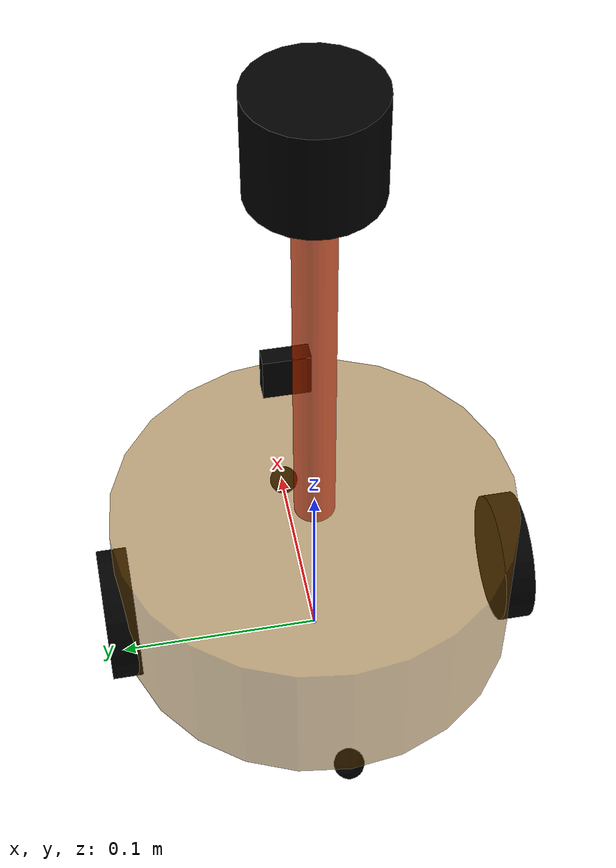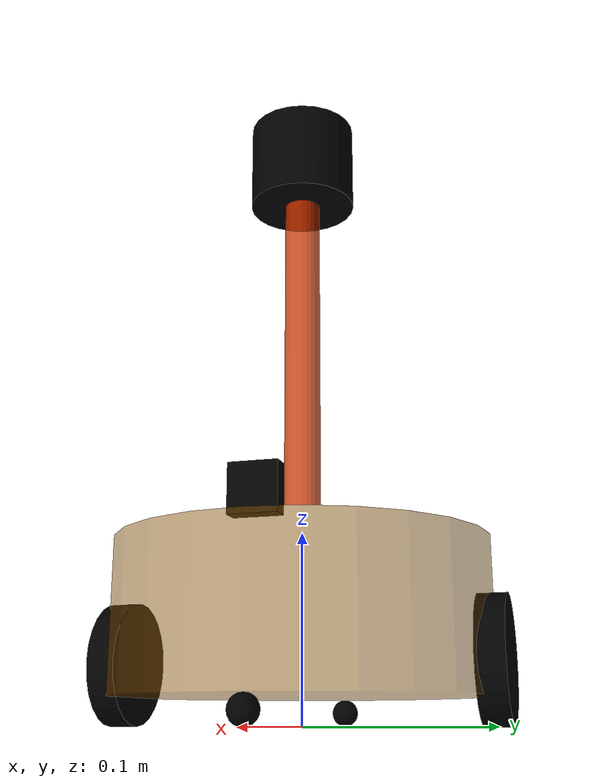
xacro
<?xml version="1.0"?>

<robot name="my_car_camera" xmlns:xacro="http://wiki.ros.org/xacro">
    <xacro:include filename="head.xacro" />
    <xacro:include filename="base.urdf.xacro" />
    <xacro:include filename="laser.urdf.xacro" />
    <xacro:include filename="imu.urdf.xacro" />

    <xacro:include filename="move.xacro" />
    <xacro:include filename="laser.xacro" />
    <xacro:include filename="imu.xacro" />
</robot>

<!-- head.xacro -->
<robot name="base" xmlns:xacro="http://wiki.ros.org/xacro">
    <!-- Macro for inertia matrix -->
    <xacro:macro name="sphere_inertial_matrix" params="m r">
        <inertial>
            <mass value="${m}" />
            <inertia ixx="${2*m*r*r/5}" ixy="0" ixz="0"
                iyy="${2*m*r*r/5}" iyz="0"
                izz="${2*m*r*r/5}" />
        </inertial>
    </xacro:macro>

    <xacro:macro name="cylinder_inertial_matrix" params="m r h">
        <inertial>
            <mass value="${m}" />
            <inertia ixx="${m*(3*r*r+h*h)/12}" ixy = "0" ixz = "0"
                iyy="${m*(3*r*r+h*h)/12}" iyz = "0"
                izz="${m*r*r/2}" />
        </inertial>
    </xacro:macro>

    <xacro:macro name="Box_inertial_matrix" params="m l w h">
       <inertial>
               <mass value="${m}" />
               <inertia ixx="${m*(h*h + l*l)/12}" ixy = "0" ixz = "0"
                   iyy="${m*(w*w + l*l)/12}" iyz= "0"
                   izz="${m*(w*w + h*h)/12}" />
       </inertial>
   </xacro:macro>
</robot>

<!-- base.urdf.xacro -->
<robot name="my_base" xmlns:xacro="http://www.ros.org/wiki/xacro">

    <xacro:property name="PI" value="3.1415926"/>

    <material name="black">
        <color rgba="0.0 0.0 0.0 1.0" />
    </material>

    <xacro:property name="base_footprint_radius" value="0.001" />
    <xacro:property name="base_link_radius" value="0.1" />
    <xacro:property name="base_link_length" value="0.08" />
    <xacro:property name="earth_space" value="0.015" />
    <xacro:property name="base_link_m" value="0.5" />

    <link name="base_footprint">
      <visual>
        <geometry>
          <sphere radius="${base_footprint_radius}" />
        </geometry>
      </visual>
    </link>

    <link name="base_link">
      <visual>
        <geometry>
          <cylinder radius="${base_link_radius}" length="${base_link_length}" />
        </geometry>
        <origin xyz="0 0 0" rpy="0 0 0" />
        <material name="yellow">
          <color rgba="0.5 0.3 0.0 0.5" />
        </material>
      </visual>
      <collision>
        <geometry>
          <cylinder radius="${base_link_radius}" length="${base_link_length}" />
        </geometry>
        <origin xyz="0 0 0" rpy="0 0 0" />
      </collision>
      <xacro:cylinder_inertial_matrix m="${base_link_m}" r="${base_link_radius}" h="${base_link_length}" />

    </link>

    <joint name="base_link2base_footprint" type="fixed">
      <parent link="base_footprint" />
      <child link="base_link" />
      <origin xyz="0 0 ${earth_space + base_link_length / 2 }" />
    </joint>
    <gazebo reference="base_link">
        <material>Gazebo/Yellow</material>
    </gazebo>

    <xacro:property name="wheel_radius" value="0.0325" />
    <xacro:property name="wheel_length" value="0.015" />
    <xacro:property name="wheel_m" value="0.05" />

    <xacro:macro name="add_wheels" params="name flag">
      <link name="${name}_wheel">
        <visual>
          <geometry>
            <cylinder radius="${wheel_radius}" length="${wheel_length}" />
          </geometry>
          <origin xyz="0.0 0.0 0.0" rpy="${PI / 2} 0.0 0.0" />
          <material name="black" />
        </visual>
        <collision>
          <geometry>
            <cylinder radius="${wheel_radius}" length="${wheel_length}" />
          </geometry>
          <origin xyz="0.0 0.0 0.0" rpy="${PI / 2} 0.0 0.0" />
        </collision>
        <xacro:cylinder_inertial_matrix m="${wheel_m}" r="${wheel_radius}" h="${wheel_length}" />

      </link>

      <joint name="${name}_wheel2base_link" type="continuous">
        <parent link="base_link" />
        <child link="${name}_wheel" />
        <origin xyz="0 ${flag * base_link_radius} ${-(earth_space + base_link_length / 2 - wheel_radius) }" />
        <axis xyz="0 1 0" />
      </joint>

      <gazebo reference="${name}_wheel">
        <material>Gazebo/Red</material>
      </gazebo>

    </xacro:macro>
    <xacro:add_wheels name="left" flag="1" />
    <xacro:add_wheels name="right" flag="-1" />

    <xacro:property name="support_wheel_radius" value="0.0075" />
    <xacro:property name="support_wheel_m" value="0.03" />

    <xacro:macro name="add_support_wheel" params="name flag" >
      <link name="${name}_wheel">
        <visual>
            <geometry>
                <sphere radius="${support_wheel_radius}" />
            </geometry>
            <origin xyz="0 0 0" rpy="0 0 0" />
            <material name="black" />
        </visual>
        <collision>
            <geometry>
                <sphere radius="${support_wheel_radius}" />
            </geometry>
            <origin xyz="0 0 0" rpy="0 0 0" />
        </collision>
        <xacro:sphere_inertial_matrix m="${support_wheel_m}" r="${support_wheel_radius}" />
      </link>

      <joint name="${name}_wheel2base_link" type="continuous">
          <parent link="base_link" />
          <child link="${name}_wheel" />
          <origin xyz="${flag * (base_link_radius - support_wheel_radius)} 0 ${-(base_link_length / 2 + earth_space / 2)}" />
          <axis xyz="1 1 1" />
      </joint>
      <gazebo reference="${name}_wheel">
        <material>Gazebo/Red</material>
      </gazebo>
    </xacro:macro>

    <xacro:add_support_wheel name="front" flag="1" />
    <xacro:add_support_wheel name="back" flag="-1" />

</robot>

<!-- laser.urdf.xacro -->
<robot name="my_laser" xmlns:xacro="http://wiki.ros.org/xacro">

    <xacro:property name="support_length" value="0.2" />
    <xacro:property name="support_radius" value="0.01" />
    <xacro:property name="support_x" value="0.0" />
    <xacro:property name="support_y" value="0.0" />
    <xacro:property name="support_z" value="${base_link_length / 2 + support_length / 2}" />
    <xacro:property name="support_m" value="0.02" />

    <link name="support">
        <visual>
            <geometry>
                <cylinder radius="${support_radius}" length="${support_length}" />
            </geometry>
            <origin xyz="0.0 0.0 0.0" rpy="0.0 0.0 0.0" />
            <material name="red">
                <color rgba="0.8 0.2 0.0 0.8" />
            </material>
        </visual>

        <collision>
            <geometry>
                <cylinder radius="${support_radius}" length="${support_length}" />
            </geometry>
            <origin xyz="0.0 0.0 0.0" rpy="0.0 0.0 0.0" />
        </collision>

        <xacro:cylinder_inertial_matrix m="${support_m}" r="${support_radius}" h="${support_length}" />

    </link>

    <joint name="support2base_link" type="fixed">
        <parent link="base_link" />
        <child link="support" />
        <origin xyz="${support_x} ${support_y} ${support_z}" />
    </joint>

    <gazebo reference="support">
        <material>Gazebo/White</material>
    </gazebo>

    <xacro:property name="laser_length" value="0.05" />
    <xacro:property name="laser_radius" value="0.03" />
    <xacro:property name="laser_x" value="0.0" />
    <xacro:property name="laser_y" value="0.0" />
    <xacro:property name="laser_z" value="${support_length / 2 + laser_length / 2}" />

    <xacro:property name="laser_m" value="0.1" />

    <link name="laser">
        <visual>
            <geometry>
                <cylinder radius="${laser_radius}" length="${laser_length}" />
            </geometry>
            <origin xyz="0.0 0.0 0.0" rpy="0.0 0.0 0.0" />
            <material name="black" />
        </visual>
        <collision>
            <geometry>
                <cylinder radius="${laser_radius}" length="${laser_length}" />
            </geometry>
            <origin xyz="0.0 0.0 0.0" rpy="0.0 0.0 0.0" />
        </collision>
        <xacro:cylinder_inertial_matrix m="${laser_m}" r="${laser_radius}" h="${laser_length}" />
    </link>

    <joint name="laser2support" type="fixed">
        <parent link="support" />
        <child link="laser" />
        <origin xyz="${laser_x} ${laser_y} ${laser_z}" />
    </joint>
    <gazebo reference="laser">
        <material>Gazebo/Black</material>
    </gazebo>
</robot>

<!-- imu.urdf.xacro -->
<!-- xacro -->
<robot name="my_imu" xmlns:xacro="http://wiki.ros.org/xacro">

    <xacro:property name="imu_length" value="0.01" />
    <xacro:property name="imu_width" value="0.025" />
    <xacro:property name="imu_height" value="0.025" />
    <xacro:property name="imu_x" value="0.08" />
    <xacro:property name="imu_y" value="0.0" />
    <xacro:property name="imu_z" value="${base_link_length / 2 + imu_height / 2}" />

    <xacro:property name="imu_m" value="0.01" />

    <link name="imu_link">
        <visual>
            <geometry>
                <box size="${imu_length} ${imu_width} ${imu_height}" />
            </geometry>
            <origin xyz="0.0 0.0 0.0" rpy="0.0 0.0 0.0" />
            <material name="black" />
        </visual>
        <collision>
            <geometry>
                <box size="${imu_length} ${imu_width} ${imu_height}" />
            </geometry>
            <origin xyz="0.0 0.0 0.0" rpy="0.0 0.0 0.0" />
        </collision>
        <xacro:Box_inertial_matrix m="${imu_m}" l="${imu_length}" w="${imu_width}" h="${imu_height}" />
    </link>

    <joint name="imu2base_link" type="fixed">
        <parent link="base_link" />
        <child link="imu_link" />
        <origin xyz="${imu_x} ${imu_y} ${imu_z}" />
    </joint>
    <gazebo reference="imu_link">
        <material>Gazebo/Blue</material>
    </gazebo>
</robot>
